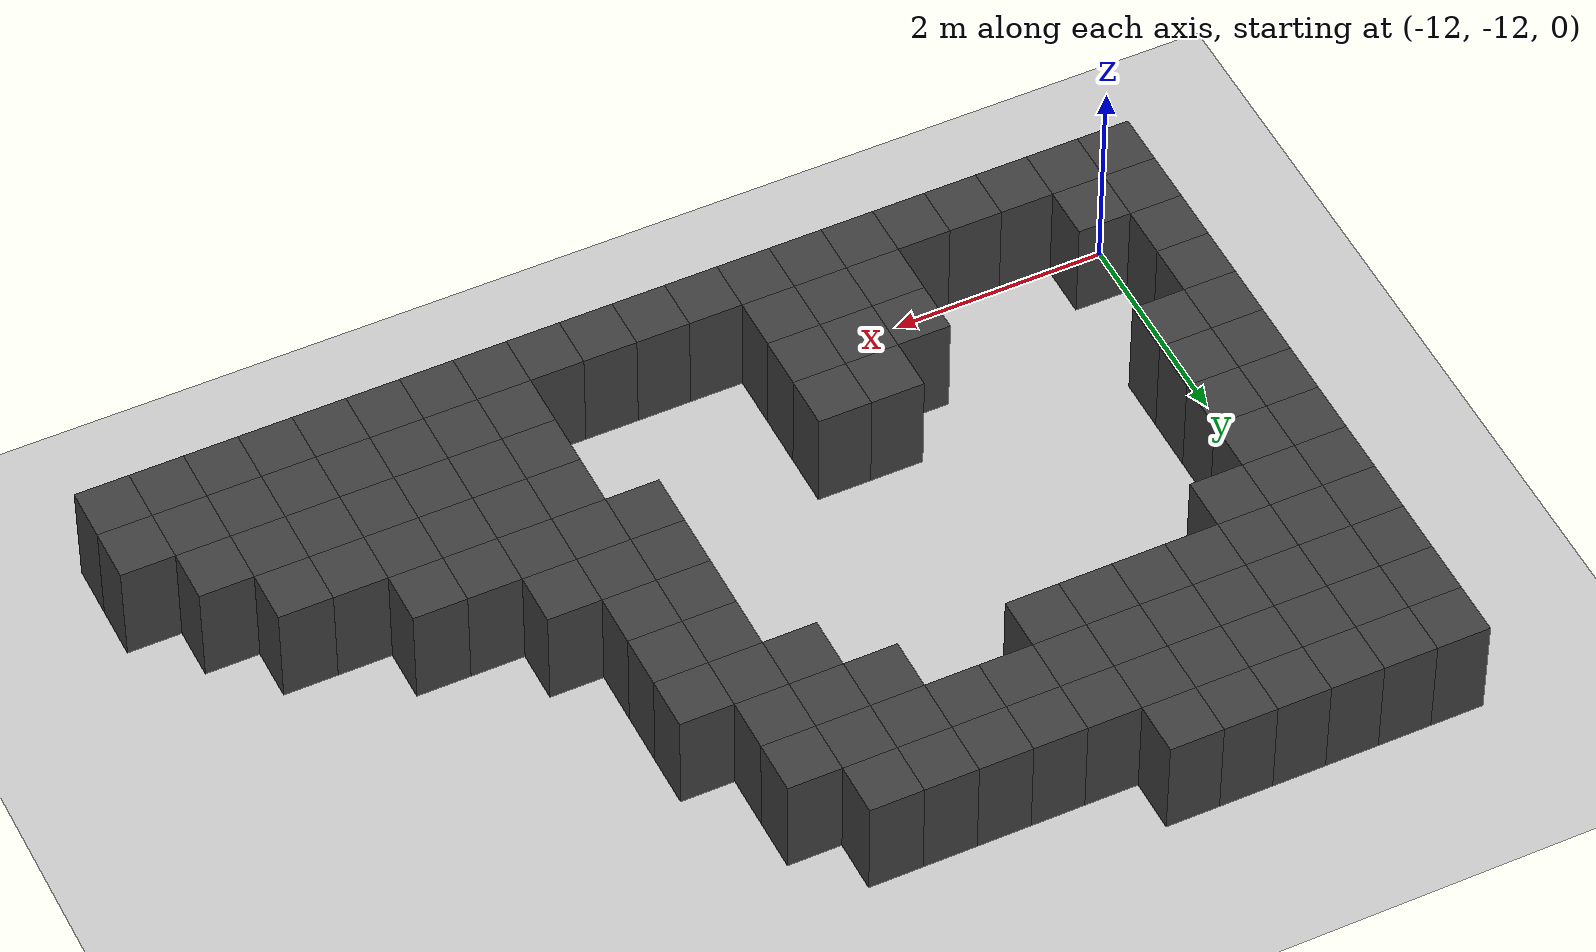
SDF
<sdf version="1.7">
 <world name="map_9705">
  <model name="ground_plane">
   <static>true</static>
   <link name="link">
    <collision name="collision">
     <geometry><plane><normal>0 0 1</normal><size>200 200</size></plane></geometry>
    </collision>
    <visual name="visual">
     <geometry><plane><normal>0 0 1</normal><size>200 200</size></plane></geometry>
     <material><ambient>0.8 0.8 0.8 1</ambient><diffuse>0.8 0.8 0.8 1</diffuse></material>
    </visual>
   </link>
  </model>
  <model name="maze_environment">
   <static>true</static>
   <link name="wall_765">
    <pose>-12.250 -6.250 0.500 0 0 0</pose>
    <collision name="col"><geometry><box><size>0.5 0.5 1.0</size></box></geometry></collision>
    <visual name="vis">
     <geometry><box><size>0.5 0.5 1.0</size></box></geometry>
     <material><ambient>0.15 0.15 0.15 1</ambient><diffuse>0.25 0.25 0.25 1</diffuse></material>
    </visual>
   </link>
   <link name="wall_766">
    <pose>-11.750 -6.250 0.500 0 0 0</pose>
    <collision name="col"><geometry><box><size>0.5 0.5 1.0</size></box></geometry></collision>
    <visual name="vis">
     <geometry><box><size>0.5 0.5 1.0</size></box></geometry>
     <material><ambient>0.15 0.15 0.15 1</ambient><diffuse>0.25 0.25 0.25 1</diffuse></material>
    </visual>
   </link>
   <link name="wall_767">
    <pose>-11.250 -6.250 0.500 0 0 0</pose>
    <collision name="col"><geometry><box><size>0.5 0.5 1.0</size></box></geometry></collision>
    <visual name="vis">
     <geometry><box><size>0.5 0.5 1.0</size></box></geometry>
     <material><ambient>0.15 0.15 0.15 1</ambient><diffuse>0.25 0.25 0.25 1</diffuse></material>
    </visual>
   </link>
   <link name="wall_768">
    <pose>-10.750 -6.250 0.500 0 0 0</pose>
    <collision name="col"><geometry><box><size>0.5 0.5 1.0</size></box></geometry></collision>
    <visual name="vis">
     <geometry><box><size>0.5 0.5 1.0</size></box></geometry>
     <material><ambient>0.15 0.15 0.15 1</ambient><diffuse>0.25 0.25 0.25 1</diffuse></material>
    </visual>
   </link>
   <link name="wall_769">
    <pose>-10.250 -6.250 0.500 0 0 0</pose>
    <collision name="col"><geometry><box><size>0.5 0.5 1.0</size></box></geometry></collision>
    <visual name="vis">
     <geometry><box><size>0.5 0.5 1.0</size></box></geometry>
     <material><ambient>0.15 0.15 0.15 1</ambient><diffuse>0.25 0.25 0.25 1</diffuse></material>
    </visual>
   </link>
   <link name="wall_770">
    <pose>-9.750 -6.250 0.500 0 0 0</pose>
    <collision name="col"><geometry><box><size>0.5 0.5 1.0</size></box></geometry></collision>
    <visual name="vis">
     <geometry><box><size>0.5 0.5 1.0</size></box></geometry>
     <material><ambient>0.15 0.15 0.15 1</ambient><diffuse>0.25 0.25 0.25 1</diffuse></material>
    </visual>
   </link>
   <link name="wall_784">
    <pose>-12.250 -6.750 0.500 0 0 0</pose>
    <collision name="col"><geometry><box><size>0.5 0.5 1.0</size></box></geometry></collision>
    <visual name="vis">
     <geometry><box><size>0.5 0.5 1.0</size></box></geometry>
     <material><ambient>0.15 0.15 0.15 1</ambient><diffuse>0.25 0.25 0.25 1</diffuse></material>
    </visual>
   </link>
   <link name="wall_785">
    <pose>-11.750 -6.750 0.500 0 0 0</pose>
    <collision name="col"><geometry><box><size>0.5 0.5 1.0</size></box></geometry></collision>
    <visual name="vis">
     <geometry><box><size>0.5 0.5 1.0</size></box></geometry>
     <material><ambient>0.15 0.15 0.15 1</ambient><diffuse>0.25 0.25 0.25 1</diffuse></material>
    </visual>
   </link>
   <link name="wall_786">
    <pose>-11.250 -6.750 0.500 0 0 0</pose>
    <collision name="col"><geometry><box><size>0.5 0.5 1.0</size></box></geometry></collision>
    <visual name="vis">
     <geometry><box><size>0.5 0.5 1.0</size></box></geometry>
     <material><ambient>0.15 0.15 0.15 1</ambient><diffuse>0.25 0.25 0.25 1</diffuse></material>
    </visual>
   </link>
   <link name="wall_787">
    <pose>-10.750 -6.750 0.500 0 0 0</pose>
    <collision name="col"><geometry><box><size>0.5 0.5 1.0</size></box></geometry></collision>
    <visual name="vis">
     <geometry><box><size>0.5 0.5 1.0</size></box></geometry>
     <material><ambient>0.15 0.15 0.15 1</ambient><diffuse>0.25 0.25 0.25 1</diffuse></material>
    </visual>
   </link>
   <link name="wall_788">
    <pose>-10.250 -6.750 0.500 0 0 0</pose>
    <collision name="col"><geometry><box><size>0.5 0.5 1.0</size></box></geometry></collision>
    <visual name="vis">
     <geometry><box><size>0.5 0.5 1.0</size></box></geometry>
     <material><ambient>0.15 0.15 0.15 1</ambient><diffuse>0.25 0.25 0.25 1</diffuse></material>
    </visual>
   </link>
   <link name="wall_789">
    <pose>-9.750 -6.750 0.500 0 0 0</pose>
    <collision name="col"><geometry><box><size>0.5 0.5 1.0</size></box></geometry></collision>
    <visual name="vis">
     <geometry><box><size>0.5 0.5 1.0</size></box></geometry>
     <material><ambient>0.15 0.15 0.15 1</ambient><diffuse>0.25 0.25 0.25 1</diffuse></material>
    </visual>
   </link>
   <link name="wall_790">
    <pose>-9.250 -6.750 0.500 0 0 0</pose>
    <collision name="col"><geometry><box><size>0.5 0.5 1.0</size></box></geometry></collision>
    <visual name="vis">
     <geometry><box><size>0.5 0.5 1.0</size></box></geometry>
     <material><ambient>0.15 0.15 0.15 1</ambient><diffuse>0.25 0.25 0.25 1</diffuse></material>
    </visual>
   </link>
   <link name="wall_791">
    <pose>-8.750 -6.750 0.500 0 0 0</pose>
    <collision name="col"><geometry><box><size>0.5 0.5 1.0</size></box></geometry></collision>
    <visual name="vis">
     <geometry><box><size>0.5 0.5 1.0</size></box></geometry>
     <material><ambient>0.15 0.15 0.15 1</ambient><diffuse>0.25 0.25 0.25 1</diffuse></material>
    </visual>
   </link>
   <link name="wall_792">
    <pose>-8.250 -6.750 0.500 0 0 0</pose>
    <collision name="col"><geometry><box><size>0.5 0.5 1.0</size></box></geometry></collision>
    <visual name="vis">
     <geometry><box><size>0.5 0.5 1.0</size></box></geometry>
     <material><ambient>0.15 0.15 0.15 1</ambient><diffuse>0.25 0.25 0.25 1</diffuse></material>
    </visual>
   </link>
   <link name="wall_793">
    <pose>-7.750 -6.750 0.500 0 0 0</pose>
    <collision name="col"><geometry><box><size>0.5 0.5 1.0</size></box></geometry></collision>
    <visual name="vis">
     <geometry><box><size>0.5 0.5 1.0</size></box></geometry>
     <material><ambient>0.15 0.15 0.15 1</ambient><diffuse>0.25 0.25 0.25 1</diffuse></material>
    </visual>
   </link>
   <link name="wall_794">
    <pose>-7.250 -6.750 0.500 0 0 0</pose>
    <collision name="col"><geometry><box><size>0.5 0.5 1.0</size></box></geometry></collision>
    <visual name="vis">
     <geometry><box><size>0.5 0.5 1.0</size></box></geometry>
     <material><ambient>0.15 0.15 0.15 1</ambient><diffuse>0.25 0.25 0.25 1</diffuse></material>
    </visual>
   </link>
   <link name="wall_808">
    <pose>-12.250 -7.250 0.500 0 0 0</pose>
    <collision name="col"><geometry><box><size>0.5 0.5 1.0</size></box></geometry></collision>
    <visual name="vis">
     <geometry><box><size>0.5 0.5 1.0</size></box></geometry>
     <material><ambient>0.15 0.15 0.15 1</ambient><diffuse>0.25 0.25 0.25 1</diffuse></material>
    </visual>
   </link>
   <link name="wall_809">
    <pose>-11.750 -7.250 0.500 0 0 0</pose>
    <collision name="col"><geometry><box><size>0.5 0.5 1.0</size></box></geometry></collision>
    <visual name="vis">
     <geometry><box><size>0.5 0.5 1.0</size></box></geometry>
     <material><ambient>0.15 0.15 0.15 1</ambient><diffuse>0.25 0.25 0.25 1</diffuse></material>
    </visual>
   </link>
   <link name="wall_810">
    <pose>-11.250 -7.250 0.500 0 0 0</pose>
    <collision name="col"><geometry><box><size>0.5 0.5 1.0</size></box></geometry></collision>
    <visual name="vis">
     <geometry><box><size>0.5 0.5 1.0</size></box></geometry>
     <material><ambient>0.15 0.15 0.15 1</ambient><diffuse>0.25 0.25 0.25 1</diffuse></material>
    </visual>
   </link>
   <link name="wall_811">
    <pose>-10.750 -7.250 0.500 0 0 0</pose>
    <collision name="col"><geometry><box><size>0.5 0.5 1.0</size></box></geometry></collision>
    <visual name="vis">
     <geometry><box><size>0.5 0.5 1.0</size></box></geometry>
     <material><ambient>0.15 0.15 0.15 1</ambient><diffuse>0.25 0.25 0.25 1</diffuse></material>
    </visual>
   </link>
   <link name="wall_812">
    <pose>-10.250 -7.250 0.500 0 0 0</pose>
    <collision name="col"><geometry><box><size>0.5 0.5 1.0</size></box></geometry></collision>
    <visual name="vis">
     <geometry><box><size>0.5 0.5 1.0</size></box></geometry>
     <material><ambient>0.15 0.15 0.15 1</ambient><diffuse>0.25 0.25 0.25 1</diffuse></material>
    </visual>
   </link>
   <link name="wall_813">
    <pose>-9.750 -7.250 0.500 0 0 0</pose>
    <collision name="col"><geometry><box><size>0.5 0.5 1.0</size></box></geometry></collision>
    <visual name="vis">
     <geometry><box><size>0.5 0.5 1.0</size></box></geometry>
     <material><ambient>0.15 0.15 0.15 1</ambient><diffuse>0.25 0.25 0.25 1</diffuse></material>
    </visual>
   </link>
   <link name="wall_814">
    <pose>-9.250 -7.250 0.500 0 0 0</pose>
    <collision name="col"><geometry><box><size>0.5 0.5 1.0</size></box></geometry></collision>
    <visual name="vis">
     <geometry><box><size>0.5 0.5 1.0</size></box></geometry>
     <material><ambient>0.15 0.15 0.15 1</ambient><diffuse>0.25 0.25 0.25 1</diffuse></material>
    </visual>
   </link>
   <link name="wall_815">
    <pose>-8.750 -7.250 0.500 0 0 0</pose>
    <collision name="col"><geometry><box><size>0.5 0.5 1.0</size></box></geometry></collision>
    <visual name="vis">
     <geometry><box><size>0.5 0.5 1.0</size></box></geometry>
     <material><ambient>0.15 0.15 0.15 1</ambient><diffuse>0.25 0.25 0.25 1</diffuse></material>
    </visual>
   </link>
   <link name="wall_816">
    <pose>-8.250 -7.250 0.500 0 0 0</pose>
    <collision name="col"><geometry><box><size>0.5 0.5 1.0</size></box></geometry></collision>
    <visual name="vis">
     <geometry><box><size>0.5 0.5 1.0</size></box></geometry>
     <material><ambient>0.15 0.15 0.15 1</ambient><diffuse>0.25 0.25 0.25 1</diffuse></material>
    </visual>
   </link>
   <link name="wall_817">
    <pose>-7.750 -7.250 0.500 0 0 0</pose>
    <collision name="col"><geometry><box><size>0.5 0.5 1.0</size></box></geometry></collision>
    <visual name="vis">
     <geometry><box><size>0.5 0.5 1.0</size></box></geometry>
     <material><ambient>0.15 0.15 0.15 1</ambient><diffuse>0.25 0.25 0.25 1</diffuse></material>
    </visual>
   </link>
   <link name="wall_818">
    <pose>-7.250 -7.250 0.500 0 0 0</pose>
    <collision name="col"><geometry><box><size>0.5 0.5 1.0</size></box></geometry></collision>
    <visual name="vis">
     <geometry><box><size>0.5 0.5 1.0</size></box></geometry>
     <material><ambient>0.15 0.15 0.15 1</ambient><diffuse>0.25 0.25 0.25 1</diffuse></material>
    </visual>
   </link>
   <link name="wall_819">
    <pose>-6.750 -7.250 0.500 0 0 0</pose>
    <collision name="col"><geometry><box><size>0.5 0.5 1.0</size></box></geometry></collision>
    <visual name="vis">
     <geometry><box><size>0.5 0.5 1.0</size></box></geometry>
     <material><ambient>0.15 0.15 0.15 1</ambient><diffuse>0.25 0.25 0.25 1</diffuse></material>
    </visual>
   </link>
   <link name="wall_835">
    <pose>-12.250 -7.750 0.500 0 0 0</pose>
    <collision name="col"><geometry><box><size>0.5 0.5 1.0</size></box></geometry></collision>
    <visual name="vis">
     <geometry><box><size>0.5 0.5 1.0</size></box></geometry>
     <material><ambient>0.15 0.15 0.15 1</ambient><diffuse>0.25 0.25 0.25 1</diffuse></material>
    </visual>
   </link>
   <link name="wall_836">
    <pose>-11.750 -7.750 0.500 0 0 0</pose>
    <collision name="col"><geometry><box><size>0.5 0.5 1.0</size></box></geometry></collision>
    <visual name="vis">
     <geometry><box><size>0.5 0.5 1.0</size></box></geometry>
     <material><ambient>0.15 0.15 0.15 1</ambient><diffuse>0.25 0.25 0.25 1</diffuse></material>
    </visual>
   </link>
   <link name="wall_837">
    <pose>-11.250 -7.750 0.500 0 0 0</pose>
    <collision name="col"><geometry><box><size>0.5 0.5 1.0</size></box></geometry></collision>
    <visual name="vis">
     <geometry><box><size>0.5 0.5 1.0</size></box></geometry>
     <material><ambient>0.15 0.15 0.15 1</ambient><diffuse>0.25 0.25 0.25 1</diffuse></material>
    </visual>
   </link>
   <link name="wall_838">
    <pose>-10.750 -7.750 0.500 0 0 0</pose>
    <collision name="col"><geometry><box><size>0.5 0.5 1.0</size></box></geometry></collision>
    <visual name="vis">
     <geometry><box><size>0.5 0.5 1.0</size></box></geometry>
     <material><ambient>0.15 0.15 0.15 1</ambient><diffuse>0.25 0.25 0.25 1</diffuse></material>
    </visual>
   </link>
   <link name="wall_839">
    <pose>-10.250 -7.750 0.500 0 0 0</pose>
    <collision name="col"><geometry><box><size>0.5 0.5 1.0</size></box></geometry></collision>
    <visual name="vis">
     <geometry><box><size>0.5 0.5 1.0</size></box></geometry>
     <material><ambient>0.15 0.15 0.15 1</ambient><diffuse>0.25 0.25 0.25 1</diffuse></material>
    </visual>
   </link>
   <link name="wall_840">
    <pose>-9.750 -7.750 0.500 0 0 0</pose>
    <collision name="col"><geometry><box><size>0.5 0.5 1.0</size></box></geometry></collision>
    <visual name="vis">
     <geometry><box><size>0.5 0.5 1.0</size></box></geometry>
     <material><ambient>0.15 0.15 0.15 1</ambient><diffuse>0.25 0.25 0.25 1</diffuse></material>
    </visual>
   </link>
   <link name="wall_841">
    <pose>-9.250 -7.750 0.500 0 0 0</pose>
    <collision name="col"><geometry><box><size>0.5 0.5 1.0</size></box></geometry></collision>
    <visual name="vis">
     <geometry><box><size>0.5 0.5 1.0</size></box></geometry>
     <material><ambient>0.15 0.15 0.15 1</ambient><diffuse>0.25 0.25 0.25 1</diffuse></material>
    </visual>
   </link>
   <link name="wall_842">
    <pose>-7.750 -7.750 0.500 0 0 0</pose>
    <collision name="col"><geometry><box><size>0.5 0.5 1.0</size></box></geometry></collision>
    <visual name="vis">
     <geometry><box><size>0.5 0.5 1.0</size></box></geometry>
     <material><ambient>0.15 0.15 0.15 1</ambient><diffuse>0.25 0.25 0.25 1</diffuse></material>
    </visual>
   </link>
   <link name="wall_843">
    <pose>-7.250 -7.750 0.500 0 0 0</pose>
    <collision name="col"><geometry><box><size>0.5 0.5 1.0</size></box></geometry></collision>
    <visual name="vis">
     <geometry><box><size>0.5 0.5 1.0</size></box></geometry>
     <material><ambient>0.15 0.15 0.15 1</ambient><diffuse>0.25 0.25 0.25 1</diffuse></material>
    </visual>
   </link>
   <link name="wall_844">
    <pose>-6.750 -7.750 0.500 0 0 0</pose>
    <collision name="col"><geometry><box><size>0.5 0.5 1.0</size></box></geometry></collision>
    <visual name="vis">
     <geometry><box><size>0.5 0.5 1.0</size></box></geometry>
     <material><ambient>0.15 0.15 0.15 1</ambient><diffuse>0.25 0.25 0.25 1</diffuse></material>
    </visual>
   </link>
   <link name="wall_861">
    <pose>-12.250 -8.250 0.500 0 0 0</pose>
    <collision name="col"><geometry><box><size>0.5 0.5 1.0</size></box></geometry></collision>
    <visual name="vis">
     <geometry><box><size>0.5 0.5 1.0</size></box></geometry>
     <material><ambient>0.15 0.15 0.15 1</ambient><diffuse>0.25 0.25 0.25 1</diffuse></material>
    </visual>
   </link>
   <link name="wall_862">
    <pose>-11.750 -8.250 0.500 0 0 0</pose>
    <collision name="col"><geometry><box><size>0.5 0.5 1.0</size></box></geometry></collision>
    <visual name="vis">
     <geometry><box><size>0.5 0.5 1.0</size></box></geometry>
     <material><ambient>0.15 0.15 0.15 1</ambient><diffuse>0.25 0.25 0.25 1</diffuse></material>
    </visual>
   </link>
   <link name="wall_863">
    <pose>-11.250 -8.250 0.500 0 0 0</pose>
    <collision name="col"><geometry><box><size>0.5 0.5 1.0</size></box></geometry></collision>
    <visual name="vis">
     <geometry><box><size>0.5 0.5 1.0</size></box></geometry>
     <material><ambient>0.15 0.15 0.15 1</ambient><diffuse>0.25 0.25 0.25 1</diffuse></material>
    </visual>
   </link>
   <link name="wall_864">
    <pose>-7.250 -8.250 0.500 0 0 0</pose>
    <collision name="col"><geometry><box><size>0.5 0.5 1.0</size></box></geometry></collision>
    <visual name="vis">
     <geometry><box><size>0.5 0.5 1.0</size></box></geometry>
     <material><ambient>0.15 0.15 0.15 1</ambient><diffuse>0.25 0.25 0.25 1</diffuse></material>
    </visual>
   </link>
   <link name="wall_865">
    <pose>-6.750 -8.250 0.500 0 0 0</pose>
    <collision name="col"><geometry><box><size>0.5 0.5 1.0</size></box></geometry></collision>
    <visual name="vis">
     <geometry><box><size>0.5 0.5 1.0</size></box></geometry>
     <material><ambient>0.15 0.15 0.15 1</ambient><diffuse>0.25 0.25 0.25 1</diffuse></material>
    </visual>
   </link>
   <link name="wall_866">
    <pose>-6.250 -8.250 0.500 0 0 0</pose>
    <collision name="col"><geometry><box><size>0.5 0.5 1.0</size></box></geometry></collision>
    <visual name="vis">
     <geometry><box><size>0.5 0.5 1.0</size></box></geometry>
     <material><ambient>0.15 0.15 0.15 1</ambient><diffuse>0.25 0.25 0.25 1</diffuse></material>
    </visual>
   </link>
   <link name="wall_876">
    <pose>-12.250 -8.750 0.500 0 0 0</pose>
    <collision name="col"><geometry><box><size>0.5 0.5 1.0</size></box></geometry></collision>
    <visual name="vis">
     <geometry><box><size>0.5 0.5 1.0</size></box></geometry>
     <material><ambient>0.15 0.15 0.15 1</ambient><diffuse>0.25 0.25 0.25 1</diffuse></material>
    </visual>
   </link>
   <link name="wall_877">
    <pose>-11.750 -8.750 0.500 0 0 0</pose>
    <collision name="col"><geometry><box><size>0.5 0.5 1.0</size></box></geometry></collision>
    <visual name="vis">
     <geometry><box><size>0.5 0.5 1.0</size></box></geometry>
     <material><ambient>0.15 0.15 0.15 1</ambient><diffuse>0.25 0.25 0.25 1</diffuse></material>
    </visual>
   </link>
   <link name="wall_878">
    <pose>-6.750 -8.750 0.500 0 0 0</pose>
    <collision name="col"><geometry><box><size>0.5 0.5 1.0</size></box></geometry></collision>
    <visual name="vis">
     <geometry><box><size>0.5 0.5 1.0</size></box></geometry>
     <material><ambient>0.15 0.15 0.15 1</ambient><diffuse>0.25 0.25 0.25 1</diffuse></material>
    </visual>
   </link>
   <link name="wall_879">
    <pose>-6.250 -8.750 0.500 0 0 0</pose>
    <collision name="col"><geometry><box><size>0.5 0.5 1.0</size></box></geometry></collision>
    <visual name="vis">
     <geometry><box><size>0.5 0.5 1.0</size></box></geometry>
     <material><ambient>0.15 0.15 0.15 1</ambient><diffuse>0.25 0.25 0.25 1</diffuse></material>
    </visual>
   </link>
   <link name="wall_887">
    <pose>-12.250 -9.250 0.500 0 0 0</pose>
    <collision name="col"><geometry><box><size>0.5 0.5 1.0</size></box></geometry></collision>
    <visual name="vis">
     <geometry><box><size>0.5 0.5 1.0</size></box></geometry>
     <material><ambient>0.15 0.15 0.15 1</ambient><diffuse>0.25 0.25 0.25 1</diffuse></material>
    </visual>
   </link>
   <link name="wall_888">
    <pose>-11.750 -9.250 0.500 0 0 0</pose>
    <collision name="col"><geometry><box><size>0.5 0.5 1.0</size></box></geometry></collision>
    <visual name="vis">
     <geometry><box><size>0.5 0.5 1.0</size></box></geometry>
     <material><ambient>0.15 0.15 0.15 1</ambient><diffuse>0.25 0.25 0.25 1</diffuse></material>
    </visual>
   </link>
   <link name="wall_889">
    <pose>-6.750 -9.250 0.500 0 0 0</pose>
    <collision name="col"><geometry><box><size>0.5 0.5 1.0</size></box></geometry></collision>
    <visual name="vis">
     <geometry><box><size>0.5 0.5 1.0</size></box></geometry>
     <material><ambient>0.15 0.15 0.15 1</ambient><diffuse>0.25 0.25 0.25 1</diffuse></material>
    </visual>
   </link>
   <link name="wall_890">
    <pose>-6.250 -9.250 0.500 0 0 0</pose>
    <collision name="col"><geometry><box><size>0.5 0.5 1.0</size></box></geometry></collision>
    <visual name="vis">
     <geometry><box><size>0.5 0.5 1.0</size></box></geometry>
     <material><ambient>0.15 0.15 0.15 1</ambient><diffuse>0.25 0.25 0.25 1</diffuse></material>
    </visual>
   </link>
   <link name="wall_898">
    <pose>-12.250 -9.750 0.500 0 0 0</pose>
    <collision name="col"><geometry><box><size>0.5 0.5 1.0</size></box></geometry></collision>
    <visual name="vis">
     <geometry><box><size>0.5 0.5 1.0</size></box></geometry>
     <material><ambient>0.15 0.15 0.15 1</ambient><diffuse>0.25 0.25 0.25 1</diffuse></material>
    </visual>
   </link>
   <link name="wall_899">
    <pose>-11.750 -9.750 0.500 0 0 0</pose>
    <collision name="col"><geometry><box><size>0.5 0.5 1.0</size></box></geometry></collision>
    <visual name="vis">
     <geometry><box><size>0.5 0.5 1.0</size></box></geometry>
     <material><ambient>0.15 0.15 0.15 1</ambient><diffuse>0.25 0.25 0.25 1</diffuse></material>
    </visual>
   </link>
   <link name="wall_900">
    <pose>-6.750 -9.750 0.500 0 0 0</pose>
    <collision name="col"><geometry><box><size>0.5 0.5 1.0</size></box></geometry></collision>
    <visual name="vis">
     <geometry><box><size>0.5 0.5 1.0</size></box></geometry>
     <material><ambient>0.15 0.15 0.15 1</ambient><diffuse>0.25 0.25 0.25 1</diffuse></material>
    </visual>
   </link>
   <link name="wall_901">
    <pose>-6.250 -9.750 0.500 0 0 0</pose>
    <collision name="col"><geometry><box><size>0.5 0.5 1.0</size></box></geometry></collision>
    <visual name="vis">
     <geometry><box><size>0.5 0.5 1.0</size></box></geometry>
     <material><ambient>0.15 0.15 0.15 1</ambient><diffuse>0.25 0.25 0.25 1</diffuse></material>
    </visual>
   </link>
   <link name="wall_902">
    <pose>-5.750 -9.750 0.500 0 0 0</pose>
    <collision name="col"><geometry><box><size>0.5 0.5 1.0</size></box></geometry></collision>
    <visual name="vis">
     <geometry><box><size>0.5 0.5 1.0</size></box></geometry>
     <material><ambient>0.15 0.15 0.15 1</ambient><diffuse>0.25 0.25 0.25 1</diffuse></material>
    </visual>
   </link>
   <link name="wall_913">
    <pose>-12.250 -10.250 0.500 0 0 0</pose>
    <collision name="col"><geometry><box><size>0.5 0.5 1.0</size></box></geometry></collision>
    <visual name="vis">
     <geometry><box><size>0.5 0.5 1.0</size></box></geometry>
     <material><ambient>0.15 0.15 0.15 1</ambient><diffuse>0.25 0.25 0.25 1</diffuse></material>
    </visual>
   </link>
   <link name="wall_914">
    <pose>-11.750 -10.250 0.500 0 0 0</pose>
    <collision name="col"><geometry><box><size>0.5 0.5 1.0</size></box></geometry></collision>
    <visual name="vis">
     <geometry><box><size>0.5 0.5 1.0</size></box></geometry>
     <material><ambient>0.15 0.15 0.15 1</ambient><diffuse>0.25 0.25 0.25 1</diffuse></material>
    </visual>
   </link>
   <link name="wall_915">
    <pose>-6.750 -10.250 0.500 0 0 0</pose>
    <collision name="col"><geometry><box><size>0.5 0.5 1.0</size></box></geometry></collision>
    <visual name="vis">
     <geometry><box><size>0.5 0.5 1.0</size></box></geometry>
     <material><ambient>0.15 0.15 0.15 1</ambient><diffuse>0.25 0.25 0.25 1</diffuse></material>
    </visual>
   </link>
   <link name="wall_916">
    <pose>-6.250 -10.250 0.500 0 0 0</pose>
    <collision name="col"><geometry><box><size>0.5 0.5 1.0</size></box></geometry></collision>
    <visual name="vis">
     <geometry><box><size>0.5 0.5 1.0</size></box></geometry>
     <material><ambient>0.15 0.15 0.15 1</ambient><diffuse>0.25 0.25 0.25 1</diffuse></material>
    </visual>
   </link>
   <link name="wall_917">
    <pose>-5.750 -10.250 0.500 0 0 0</pose>
    <collision name="col"><geometry><box><size>0.5 0.5 1.0</size></box></geometry></collision>
    <visual name="vis">
     <geometry><box><size>0.5 0.5 1.0</size></box></geometry>
     <material><ambient>0.15 0.15 0.15 1</ambient><diffuse>0.25 0.25 0.25 1</diffuse></material>
    </visual>
   </link>
   <link name="wall_918">
    <pose>-5.250 -10.250 0.500 0 0 0</pose>
    <collision name="col"><geometry><box><size>0.5 0.5 1.0</size></box></geometry></collision>
    <visual name="vis">
     <geometry><box><size>0.5 0.5 1.0</size></box></geometry>
     <material><ambient>0.15 0.15 0.15 1</ambient><diffuse>0.25 0.25 0.25 1</diffuse></material>
    </visual>
   </link>
   <link name="wall_919">
    <pose>-4.750 -10.250 0.500 0 0 0</pose>
    <collision name="col"><geometry><box><size>0.5 0.5 1.0</size></box></geometry></collision>
    <visual name="vis">
     <geometry><box><size>0.5 0.5 1.0</size></box></geometry>
     <material><ambient>0.15 0.15 0.15 1</ambient><diffuse>0.25 0.25 0.25 1</diffuse></material>
    </visual>
   </link>
   <link name="wall_931">
    <pose>-12.250 -10.750 0.500 0 0 0</pose>
    <collision name="col"><geometry><box><size>0.5 0.5 1.0</size></box></geometry></collision>
    <visual name="vis">
     <geometry><box><size>0.5 0.5 1.0</size></box></geometry>
     <material><ambient>0.15 0.15 0.15 1</ambient><diffuse>0.25 0.25 0.25 1</diffuse></material>
    </visual>
   </link>
   <link name="wall_932">
    <pose>-9.250 -10.750 0.500 0 0 0</pose>
    <collision name="col"><geometry><box><size>0.5 0.5 1.0</size></box></geometry></collision>
    <visual name="vis">
     <geometry><box><size>0.5 0.5 1.0</size></box></geometry>
     <material><ambient>0.15 0.15 0.15 1</ambient><diffuse>0.25 0.25 0.25 1</diffuse></material>
    </visual>
   </link>
   <link name="wall_933">
    <pose>-8.750 -10.750 0.500 0 0 0</pose>
    <collision name="col"><geometry><box><size>0.5 0.5 1.0</size></box></geometry></collision>
    <visual name="vis">
     <geometry><box><size>0.5 0.5 1.0</size></box></geometry>
     <material><ambient>0.15 0.15 0.15 1</ambient><diffuse>0.25 0.25 0.25 1</diffuse></material>
    </visual>
   </link>
   <link name="wall_934">
    <pose>-6.250 -10.750 0.500 0 0 0</pose>
    <collision name="col"><geometry><box><size>0.5 0.5 1.0</size></box></geometry></collision>
    <visual name="vis">
     <geometry><box><size>0.5 0.5 1.0</size></box></geometry>
     <material><ambient>0.15 0.15 0.15 1</ambient><diffuse>0.25 0.25 0.25 1</diffuse></material>
    </visual>
   </link>
   <link name="wall_935">
    <pose>-5.750 -10.750 0.500 0 0 0</pose>
    <collision name="col"><geometry><box><size>0.5 0.5 1.0</size></box></geometry></collision>
    <visual name="vis">
     <geometry><box><size>0.5 0.5 1.0</size></box></geometry>
     <material><ambient>0.15 0.15 0.15 1</ambient><diffuse>0.25 0.25 0.25 1</diffuse></material>
    </visual>
   </link>
   <link name="wall_936">
    <pose>-5.250 -10.750 0.500 0 0 0</pose>
    <collision name="col"><geometry><box><size>0.5 0.5 1.0</size></box></geometry></collision>
    <visual name="vis">
     <geometry><box><size>0.5 0.5 1.0</size></box></geometry>
     <material><ambient>0.15 0.15 0.15 1</ambient><diffuse>0.25 0.25 0.25 1</diffuse></material>
    </visual>
   </link>
   <link name="wall_937">
    <pose>-4.750 -10.750 0.500 0 0 0</pose>
    <collision name="col"><geometry><box><size>0.5 0.5 1.0</size></box></geometry></collision>
    <visual name="vis">
     <geometry><box><size>0.5 0.5 1.0</size></box></geometry>
     <material><ambient>0.15 0.15 0.15 1</ambient><diffuse>0.25 0.25 0.25 1</diffuse></material>
    </visual>
   </link>
   <link name="wall_938">
    <pose>-4.250 -10.750 0.500 0 0 0</pose>
    <collision name="col"><geometry><box><size>0.5 0.5 1.0</size></box></geometry></collision>
    <visual name="vis">
     <geometry><box><size>0.5 0.5 1.0</size></box></geometry>
     <material><ambient>0.15 0.15 0.15 1</ambient><diffuse>0.25 0.25 0.25 1</diffuse></material>
    </visual>
   </link>
   <link name="wall_939">
    <pose>-3.750 -10.750 0.500 0 0 0</pose>
    <collision name="col"><geometry><box><size>0.5 0.5 1.0</size></box></geometry></collision>
    <visual name="vis">
     <geometry><box><size>0.5 0.5 1.0</size></box></geometry>
     <material><ambient>0.15 0.15 0.15 1</ambient><diffuse>0.25 0.25 0.25 1</diffuse></material>
    </visual>
   </link>
   <link name="wall_952">
    <pose>-12.250 -11.250 0.500 0 0 0</pose>
    <collision name="col"><geometry><box><size>0.5 0.5 1.0</size></box></geometry></collision>
    <visual name="vis">
     <geometry><box><size>0.5 0.5 1.0</size></box></geometry>
     <material><ambient>0.15 0.15 0.15 1</ambient><diffuse>0.25 0.25 0.25 1</diffuse></material>
    </visual>
   </link>
   <link name="wall_953">
    <pose>-9.750 -11.250 0.500 0 0 0</pose>
    <collision name="col"><geometry><box><size>0.5 0.5 1.0</size></box></geometry></collision>
    <visual name="vis">
     <geometry><box><size>0.5 0.5 1.0</size></box></geometry>
     <material><ambient>0.15 0.15 0.15 1</ambient><diffuse>0.25 0.25 0.25 1</diffuse></material>
    </visual>
   </link>
   <link name="wall_954">
    <pose>-9.250 -11.250 0.500 0 0 0</pose>
    <collision name="col"><geometry><box><size>0.5 0.5 1.0</size></box></geometry></collision>
    <visual name="vis">
     <geometry><box><size>0.5 0.5 1.0</size></box></geometry>
     <material><ambient>0.15 0.15 0.15 1</ambient><diffuse>0.25 0.25 0.25 1</diffuse></material>
    </visual>
   </link>
   <link name="wall_955">
    <pose>-8.750 -11.250 0.500 0 0 0</pose>
    <collision name="col"><geometry><box><size>0.5 0.5 1.0</size></box></geometry></collision>
    <visual name="vis">
     <geometry><box><size>0.5 0.5 1.0</size></box></geometry>
     <material><ambient>0.15 0.15 0.15 1</ambient><diffuse>0.25 0.25 0.25 1</diffuse></material>
    </visual>
   </link>
   <link name="wall_956">
    <pose>-6.250 -11.250 0.500 0 0 0</pose>
    <collision name="col"><geometry><box><size>0.5 0.5 1.0</size></box></geometry></collision>
    <visual name="vis">
     <geometry><box><size>0.5 0.5 1.0</size></box></geometry>
     <material><ambient>0.15 0.15 0.15 1</ambient><diffuse>0.25 0.25 0.25 1</diffuse></material>
    </visual>
   </link>
   <link name="wall_957">
    <pose>-5.750 -11.250 0.500 0 0 0</pose>
    <collision name="col"><geometry><box><size>0.5 0.5 1.0</size></box></geometry></collision>
    <visual name="vis">
     <geometry><box><size>0.5 0.5 1.0</size></box></geometry>
     <material><ambient>0.15 0.15 0.15 1</ambient><diffuse>0.25 0.25 0.25 1</diffuse></material>
    </visual>
   </link>
   <link name="wall_958">
    <pose>-5.250 -11.250 0.500 0 0 0</pose>
    <collision name="col"><geometry><box><size>0.5 0.5 1.0</size></box></geometry></collision>
    <visual name="vis">
     <geometry><box><size>0.5 0.5 1.0</size></box></geometry>
     <material><ambient>0.15 0.15 0.15 1</ambient><diffuse>0.25 0.25 0.25 1</diffuse></material>
    </visual>
   </link>
   <link name="wall_959">
    <pose>-4.750 -11.250 0.500 0 0 0</pose>
    <collision name="col"><geometry><box><size>0.5 0.5 1.0</size></box></geometry></collision>
    <visual name="vis">
     <geometry><box><size>0.5 0.5 1.0</size></box></geometry>
     <material><ambient>0.15 0.15 0.15 1</ambient><diffuse>0.25 0.25 0.25 1</diffuse></material>
    </visual>
   </link>
   <link name="wall_960">
    <pose>-4.250 -11.250 0.500 0 0 0</pose>
    <collision name="col"><geometry><box><size>0.5 0.5 1.0</size></box></geometry></collision>
    <visual name="vis">
     <geometry><box><size>0.5 0.5 1.0</size></box></geometry>
     <material><ambient>0.15 0.15 0.15 1</ambient><diffuse>0.25 0.25 0.25 1</diffuse></material>
    </visual>
   </link>
   <link name="wall_961">
    <pose>-3.750 -11.250 0.500 0 0 0</pose>
    <collision name="col"><geometry><box><size>0.5 0.5 1.0</size></box></geometry></collision>
    <visual name="vis">
     <geometry><box><size>0.5 0.5 1.0</size></box></geometry>
     <material><ambient>0.15 0.15 0.15 1</ambient><diffuse>0.25 0.25 0.25 1</diffuse></material>
    </visual>
   </link>
   <link name="wall_962">
    <pose>-3.250 -11.250 0.500 0 0 0</pose>
    <collision name="col"><geometry><box><size>0.5 0.5 1.0</size></box></geometry></collision>
    <visual name="vis">
     <geometry><box><size>0.5 0.5 1.0</size></box></geometry>
     <material><ambient>0.15 0.15 0.15 1</ambient><diffuse>0.25 0.25 0.25 1</diffuse></material>
    </visual>
   </link>
   <link name="wall_981">
    <pose>-12.250 -11.750 0.500 0 0 0</pose>
    <collision name="col"><geometry><box><size>0.5 0.5 1.0</size></box></geometry></collision>
    <visual name="vis">
     <geometry><box><size>0.5 0.5 1.0</size></box></geometry>
     <material><ambient>0.15 0.15 0.15 1</ambient><diffuse>0.25 0.25 0.25 1</diffuse></material>
    </visual>
   </link>
   <link name="wall_982">
    <pose>-11.750 -11.750 0.500 0 0 0</pose>
    <collision name="col"><geometry><box><size>0.5 0.5 1.0</size></box></geometry></collision>
    <visual name="vis">
     <geometry><box><size>0.5 0.5 1.0</size></box></geometry>
     <material><ambient>0.15 0.15 0.15 1</ambient><diffuse>0.25 0.25 0.25 1</diffuse></material>
    </visual>
   </link>
   <link name="wall_983">
    <pose>-9.750 -11.750 0.500 0 0 0</pose>
    <collision name="col"><geometry><box><size>0.5 0.5 1.0</size></box></geometry></collision>
    <visual name="vis">
     <geometry><box><size>0.5 0.5 1.0</size></box></geometry>
     <material><ambient>0.15 0.15 0.15 1</ambient><diffuse>0.25 0.25 0.25 1</diffuse></material>
    </visual>
   </link>
   <link name="wall_984">
    <pose>-9.250 -11.750 0.500 0 0 0</pose>
    <collision name="col"><geometry><box><size>0.5 0.5 1.0</size></box></geometry></collision>
    <visual name="vis">
     <geometry><box><size>0.5 0.5 1.0</size></box></geometry>
     <material><ambient>0.15 0.15 0.15 1</ambient><diffuse>0.25 0.25 0.25 1</diffuse></material>
    </visual>
   </link>
   <link name="wall_985">
    <pose>-8.750 -11.750 0.500 0 0 0</pose>
    <collision name="col"><geometry><box><size>0.5 0.5 1.0</size></box></geometry></collision>
    <visual name="vis">
     <geometry><box><size>0.5 0.5 1.0</size></box></geometry>
     <material><ambient>0.15 0.15 0.15 1</ambient><diffuse>0.25 0.25 0.25 1</diffuse></material>
    </visual>
   </link>
   <link name="wall_986">
    <pose>-6.250 -11.750 0.500 0 0 0</pose>
    <collision name="col"><geometry><box><size>0.5 0.5 1.0</size></box></geometry></collision>
    <visual name="vis">
     <geometry><box><size>0.5 0.5 1.0</size></box></geometry>
     <material><ambient>0.15 0.15 0.15 1</ambient><diffuse>0.25 0.25 0.25 1</diffuse></material>
    </visual>
   </link>
   <link name="wall_987">
    <pose>-5.750 -11.750 0.500 0 0 0</pose>
    <collision name="col"><geometry><box><size>0.5 0.5 1.0</size></box></geometry></collision>
    <visual name="vis">
     <geometry><box><size>0.5 0.5 1.0</size></box></geometry>
     <material><ambient>0.15 0.15 0.15 1</ambient><diffuse>0.25 0.25 0.25 1</diffuse></material>
    </visual>
   </link>
   <link name="wall_988">
    <pose>-5.250 -11.750 0.500 0 0 0</pose>
    <collision name="col"><geometry><box><size>0.5 0.5 1.0</size></box></geometry></collision>
    <visual name="vis">
     <geometry><box><size>0.5 0.5 1.0</size></box></geometry>
     <material><ambient>0.15 0.15 0.15 1</ambient><diffuse>0.25 0.25 0.25 1</diffuse></material>
    </visual>
   </link>
   <link name="wall_989">
    <pose>-4.750 -11.750 0.500 0 0 0</pose>
    <collision name="col"><geometry><box><size>0.5 0.5 1.0</size></box></geometry></collision>
    <visual name="vis">
     <geometry><box><size>0.5 0.5 1.0</size></box></geometry>
     <material><ambient>0.15 0.15 0.15 1</ambient><diffuse>0.25 0.25 0.25 1</diffuse></material>
    </visual>
   </link>
   <link name="wall_990">
    <pose>-4.250 -11.750 0.500 0 0 0</pose>
    <collision name="col"><geometry><box><size>0.5 0.5 1.0</size></box></geometry></collision>
    <visual name="vis">
     <geometry><box><size>0.5 0.5 1.0</size></box></geometry>
     <material><ambient>0.15 0.15 0.15 1</ambient><diffuse>0.25 0.25 0.25 1</diffuse></material>
    </visual>
   </link>
   <link name="wall_991">
    <pose>-3.750 -11.750 0.500 0 0 0</pose>
    <collision name="col"><geometry><box><size>0.5 0.5 1.0</size></box></geometry></collision>
    <visual name="vis">
     <geometry><box><size>0.5 0.5 1.0</size></box></geometry>
     <material><ambient>0.15 0.15 0.15 1</ambient><diffuse>0.25 0.25 0.25 1</diffuse></material>
    </visual>
   </link>
   <link name="wall_992">
    <pose>-3.250 -11.750 0.500 0 0 0</pose>
    <collision name="col"><geometry><box><size>0.5 0.5 1.0</size></box></geometry></collision>
    <visual name="vis">
     <geometry><box><size>0.5 0.5 1.0</size></box></geometry>
     <material><ambient>0.15 0.15 0.15 1</ambient><diffuse>0.25 0.25 0.25 1</diffuse></material>
    </visual>
   </link>
   <link name="wall_993">
    <pose>-2.750 -11.750 0.500 0 0 0</pose>
    <collision name="col"><geometry><box><size>0.5 0.5 1.0</size></box></geometry></collision>
    <visual name="vis">
     <geometry><box><size>0.5 0.5 1.0</size></box></geometry>
     <material><ambient>0.15 0.15 0.15 1</ambient><diffuse>0.25 0.25 0.25 1</diffuse></material>
    </visual>
   </link>
   <link name="wall_1019">
    <pose>-12.250 -12.250 0.500 0 0 0</pose>
    <collision name="col"><geometry><box><size>0.5 0.5 1.0</size></box></geometry></collision>
    <visual name="vis">
     <geometry><box><size>0.5 0.5 1.0</size></box></geometry>
     <material><ambient>0.15 0.15 0.15 1</ambient><diffuse>0.25 0.25 0.25 1</diffuse></material>
    </visual>
   </link>
   <link name="wall_1020">
    <pose>-11.750 -12.250 0.500 0 0 0</pose>
    <collision name="col"><geometry><box><size>0.5 0.5 1.0</size></box></geometry></collision>
    <visual name="vis">
     <geometry><box><size>0.5 0.5 1.0</size></box></geometry>
     <material><ambient>0.15 0.15 0.15 1</ambient><diffuse>0.25 0.25 0.25 1</diffuse></material>
    </visual>
   </link>
   <link name="wall_1021">
    <pose>-11.250 -12.250 0.500 0 0 0</pose>
    <collision name="col"><geometry><box><size>0.5 0.5 1.0</size></box></geometry></collision>
    <visual name="vis">
     <geometry><box><size>0.5 0.5 1.0</size></box></geometry>
     <material><ambient>0.15 0.15 0.15 1</ambient><diffuse>0.25 0.25 0.25 1</diffuse></material>
    </visual>
   </link>
   <link name="wall_1022">
    <pose>-10.750 -12.250 0.500 0 0 0</pose>
    <collision name="col"><geometry><box><size>0.5 0.5 1.0</size></box></geometry></collision>
    <visual name="vis">
     <geometry><box><size>0.5 0.5 1.0</size></box></geometry>
     <material><ambient>0.15 0.15 0.15 1</ambient><diffuse>0.25 0.25 0.25 1</diffuse></material>
    </visual>
   </link>
   <link name="wall_1023">
    <pose>-10.250 -12.250 0.500 0 0 0</pose>
    <collision name="col"><geometry><box><size>0.5 0.5 1.0</size></box></geometry></collision>
    <visual name="vis">
     <geometry><box><size>0.5 0.5 1.0</size></box></geometry>
     <material><ambient>0.15 0.15 0.15 1</ambient><diffuse>0.25 0.25 0.25 1</diffuse></material>
    </visual>
   </link>
   <link name="wall_1024">
    <pose>-9.750 -12.250 0.500 0 0 0</pose>
    <collision name="col"><geometry><box><size>0.5 0.5 1.0</size></box></geometry></collision>
    <visual name="vis">
     <geometry><box><size>0.5 0.5 1.0</size></box></geometry>
     <material><ambient>0.15 0.15 0.15 1</ambient><diffuse>0.25 0.25 0.25 1</diffuse></material>
    </visual>
   </link>
   <link name="wall_1025">
    <pose>-9.250 -12.250 0.500 0 0 0</pose>
    <collision name="col"><geometry><box><size>0.5 0.5 1.0</size></box></geometry></collision>
    <visual name="vis">
     <geometry><box><size>0.5 0.5 1.0</size></box></geometry>
     <material><ambient>0.15 0.15 0.15 1</ambient><diffuse>0.25 0.25 0.25 1</diffuse></material>
    </visual>
   </link>
   <link name="wall_1026">
    <pose>-8.750 -12.250 0.500 0 0 0</pose>
    <collision name="col"><geometry><box><size>0.5 0.5 1.0</size></box></geometry></collision>
    <visual name="vis">
     <geometry><box><size>0.5 0.5 1.0</size></box></geometry>
     <material><ambient>0.15 0.15 0.15 1</ambient><diffuse>0.25 0.25 0.25 1</diffuse></material>
    </visual>
   </link>
   <link name="wall_1027">
    <pose>-8.250 -12.250 0.500 0 0 0</pose>
    <collision name="col"><geometry><box><size>0.5 0.5 1.0</size></box></geometry></collision>
    <visual name="vis">
     <geometry><box><size>0.5 0.5 1.0</size></box></geometry>
     <material><ambient>0.15 0.15 0.15 1</ambient><diffuse>0.25 0.25 0.25 1</diffuse></material>
    </visual>
   </link>
   <link name="wall_1028">
    <pose>-7.750 -12.250 0.500 0 0 0</pose>
    <collision name="col"><geometry><box><size>0.5 0.5 1.0</size></box></geometry></collision>
    <visual name="vis">
     <geometry><box><size>0.5 0.5 1.0</size></box></geometry>
     <material><ambient>0.15 0.15 0.15 1</ambient><diffuse>0.25 0.25 0.25 1</diffuse></material>
    </visual>
   </link>
   <link name="wall_1029">
    <pose>-7.250 -12.250 0.500 0 0 0</pose>
    <collision name="col"><geometry><box><size>0.5 0.5 1.0</size></box></geometry></collision>
    <visual name="vis">
     <geometry><box><size>0.5 0.5 1.0</size></box></geometry>
     <material><ambient>0.15 0.15 0.15 1</ambient><diffuse>0.25 0.25 0.25 1</diffuse></material>
    </visual>
   </link>
   <link name="wall_1030">
    <pose>-6.750 -12.250 0.500 0 0 0</pose>
    <collision name="col"><geometry><box><size>0.5 0.5 1.0</size></box></geometry></collision>
    <visual name="vis">
     <geometry><box><size>0.5 0.5 1.0</size></box></geometry>
     <material><ambient>0.15 0.15 0.15 1</ambient><diffuse>0.25 0.25 0.25 1</diffuse></material>
    </visual>
   </link>
   <link name="wall_1031">
    <pose>-6.250 -12.250 0.500 0 0 0</pose>
    <collision name="col"><geometry><box><size>0.5 0.5 1.0</size></box></geometry></collision>
    <visual name="vis">
     <geometry><box><size>0.5 0.5 1.0</size></box></geometry>
     <material><ambient>0.15 0.15 0.15 1</ambient><diffuse>0.25 0.25 0.25 1</diffuse></material>
    </visual>
   </link>
   <link name="wall_1032">
    <pose>-5.750 -12.250 0.500 0 0 0</pose>
    <collision name="col"><geometry><box><size>0.5 0.5 1.0</size></box></geometry></collision>
    <visual name="vis">
     <geometry><box><size>0.5 0.5 1.0</size></box></geometry>
     <material><ambient>0.15 0.15 0.15 1</ambient><diffuse>0.25 0.25 0.25 1</diffuse></material>
    </visual>
   </link>
   <link name="wall_1033">
    <pose>-5.250 -12.250 0.500 0 0 0</pose>
    <collision name="col"><geometry><box><size>0.5 0.5 1.0</size></box></geometry></collision>
    <visual name="vis">
     <geometry><box><size>0.5 0.5 1.0</size></box></geometry>
     <material><ambient>0.15 0.15 0.15 1</ambient><diffuse>0.25 0.25 0.25 1</diffuse></material>
    </visual>
   </link>
   <link name="wall_1034">
    <pose>-4.750 -12.250 0.500 0 0 0</pose>
    <collision name="col"><geometry><box><size>0.5 0.5 1.0</size></box></geometry></collision>
    <visual name="vis">
     <geometry><box><size>0.5 0.5 1.0</size></box></geometry>
     <material><ambient>0.15 0.15 0.15 1</ambient><diffuse>0.25 0.25 0.25 1</diffuse></material>
    </visual>
   </link>
   <link name="wall_1035">
    <pose>-4.250 -12.250 0.500 0 0 0</pose>
    <collision name="col"><geometry><box><size>0.5 0.5 1.0</size></box></geometry></collision>
    <visual name="vis">
     <geometry><box><size>0.5 0.5 1.0</size></box></geometry>
     <material><ambient>0.15 0.15 0.15 1</ambient><diffuse>0.25 0.25 0.25 1</diffuse></material>
    </visual>
   </link>
   <link name="wall_1036">
    <pose>-3.750 -12.250 0.500 0 0 0</pose>
    <collision name="col"><geometry><box><size>0.5 0.5 1.0</size></box></geometry></collision>
    <visual name="vis">
     <geometry><box><size>0.5 0.5 1.0</size></box></geometry>
     <material><ambient>0.15 0.15 0.15 1</ambient><diffuse>0.25 0.25 0.25 1</diffuse></material>
    </visual>
   </link>
   <link name="wall_1037">
    <pose>-3.250 -12.250 0.500 0 0 0</pose>
    <collision name="col"><geometry><box><size>0.5 0.5 1.0</size></box></geometry></collision>
    <visual name="vis">
     <geometry><box><size>0.5 0.5 1.0</size></box></geometry>
     <material><ambient>0.15 0.15 0.15 1</ambient><diffuse>0.25 0.25 0.25 1</diffuse></material>
    </visual>
   </link>
   <link name="wall_1038">
    <pose>-2.750 -12.250 0.500 0 0 0</pose>
    <collision name="col"><geometry><box><size>0.5 0.5 1.0</size></box></geometry></collision>
    <visual name="vis">
     <geometry><box><size>0.5 0.5 1.0</size></box></geometry>
     <material><ambient>0.15 0.15 0.15 1</ambient><diffuse>0.25 0.25 0.25 1</diffuse></material>
    </visual>
   </link>
  </model>
 </world>
</sdf>
